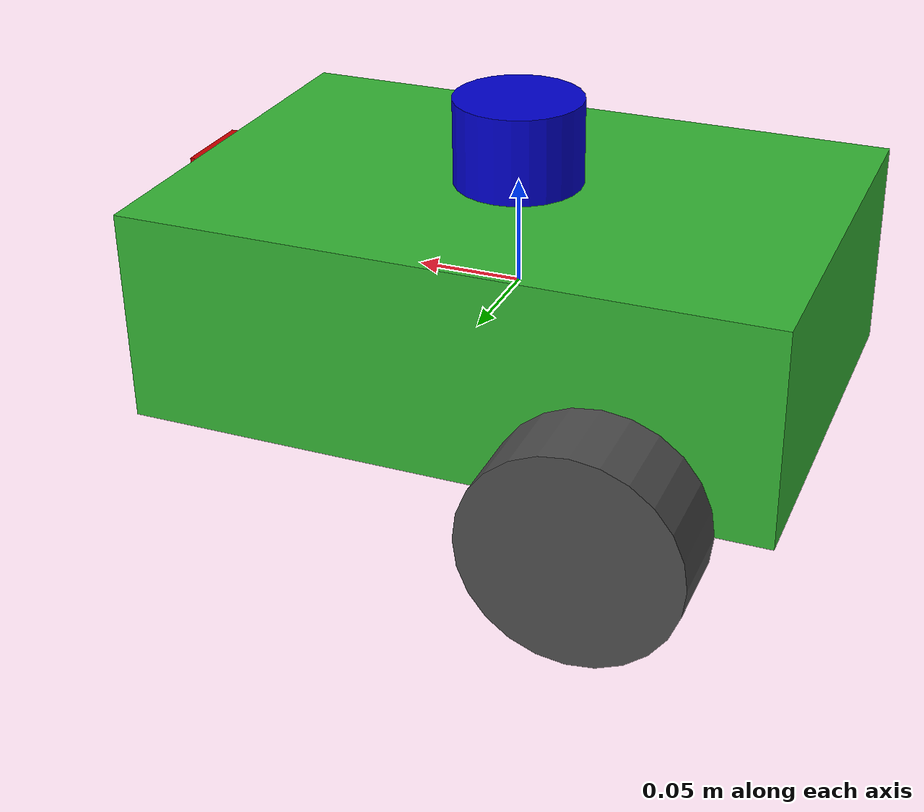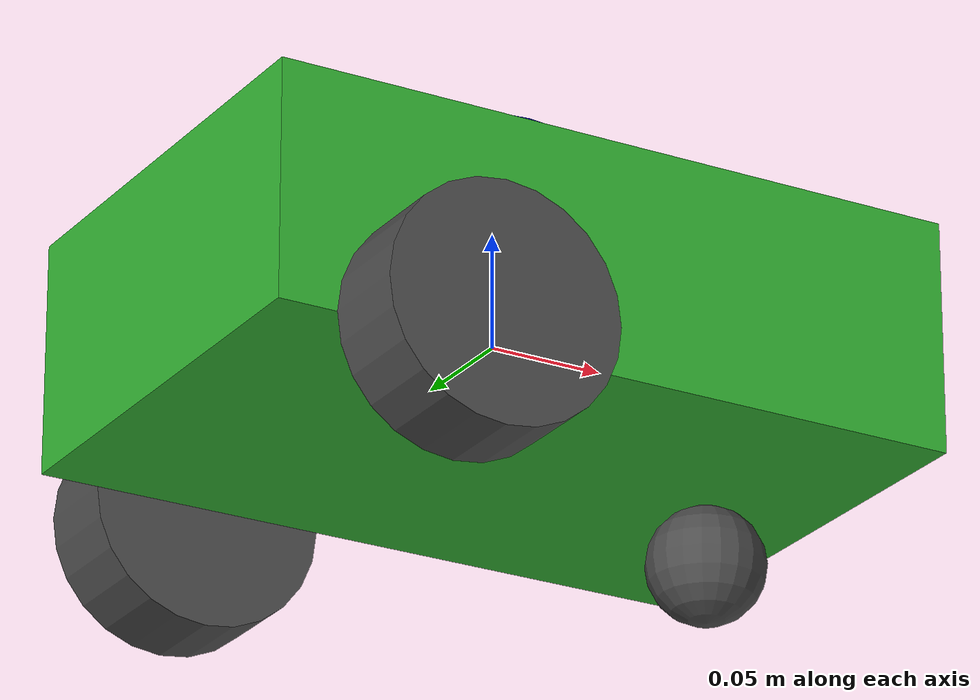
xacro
<?xml version="1.0"?>
<robot xmlns:xacro="http://www.ros.org/wiki/xacro" name="grass_chopper">

  <!-- マテリアル定義 (見た目の色)                                       -->
  <material name="green">
    <color rgba="0.2 0.7 0.2 1.0"/>
  </material>
  <material name="dark_grey">
    <color rgba="0.3 0.3 0.3 1.0"/>
  </material>
  <material name="blue">
    <color rgba="0.0 0.0 0.8 1.0"/>
  </material>
  <material name="red">
    <color rgba="0.8 0.0 0.0 1.0"/>
  </material>

  <!-- ロボット寸法パラメータ                                            -->
  <!-- Xacroのプロパティで一元管理（変更が容易）                        -->
  <!-- シャーシ（本体）の寸法 [m] -->
  <xacro:property name="chassis_length" value="0.3"/>
  <xacro:property name="chassis_width" value="0.2"/>
  <xacro:property name="chassis_height" value="0.1"/>
  <xacro:property name="chassis_mass" value="2.0"/>

  <!-- 駆動輪の寸法 [m] -->
  <xacro:property name="wheel_radius" value="0.05"/>
  <xacro:property name="wheel_width" value="0.04"/>
  <xacro:property name="wheel_mass" value="0.3"/>

  <!-- キャスター（受動輪）の寸法 [m] -->
  <xacro:property name="caster_radius" value="0.025"/>
  <xacro:property name="caster_mass" value="0.1"/>

  <!-- 車輪間の距離 [m] (差動駆動の旋回に影響) -->
  <xacro:property name="wheel_separation" value="0.24"/>

  <!-- 慣性テンソル計算マクロ                                            -->
  <!-- 物理シミュレーションには質量と慣性モーメントが必須です。          -->
  <!-- これらがないとGazeboがモデルを正しく扱えません。                 -->

  <!-- 直方体の慣性テンソル -->
  <xacro:macro name="box_inertia" params="m x y z">
    <inertial>
      <mass value="${m}"/>
      <inertia
        ixx="${m*(y*y+z*z)/12}" ixy="0.0" ixz="0.0"
        iyy="${m*(x*x+z*z)/12}" iyz="0.0"
        izz="${m*(x*x+y*y)/12}"/>
    </inertial>
  </xacro:macro>

  <!-- 円柱の慣性テンソル -->
  <xacro:macro name="cylinder_inertia" params="m r l">
    <inertial>
      <mass value="${m}"/>
      <inertia
        ixx="${m*(3*r*r+l*l)/12}" ixy="0.0" ixz="0.0"
        iyy="${m*(3*r*r+l*l)/12}" iyz="0.0"
        izz="${m*r*r/2}"/>
    </inertial>
  </xacro:macro>

  <!-- 球体の慣性テンソル -->
  <xacro:macro name="sphere_inertia" params="m r">
    <inertial>
      <mass value="${m}"/>
      <inertia
        ixx="${2*m*r*r/5}" ixy="0.0" ixz="0.0"
        iyy="${2*m*r*r/5}" iyz="0.0"
        izz="${2*m*r*r/5}"/>
    </inertial>
  </xacro:macro>

  <!-- base_link: ロボット本体（シャーシ）                               -->
  <!-- ロボットの中心となるリンク。全ての部品はここを基準に配置される -->
  <link name="base_link">
    <!-- 慣性パラメータ（物理計算に必須） -->
    <xacro:box_inertia m="${chassis_mass}"
      x="${chassis_length}" y="${chassis_width}" z="${chassis_height}"/>
    <!-- 見た目（rviz2やGazeboで表示される形状） -->
    <visual>
      <geometry>
        <box size="${chassis_length} ${chassis_width} ${chassis_height}"/>
      </geometry>
      <material name="green"/>
    </visual>
    <!-- 衝突判定（物理エンジンが使う形状） -->
    <collision>
      <geometry>
        <box size="${chassis_length} ${chassis_width} ${chassis_height}"/>
      </geometry>
    </collision>
  </link>

  <!-- 車輪マクロ: 左右の車輪を共通化                                   -->
  <!-- prefix: "left" or "right"                                         -->
  <!-- y_offset: 車輪のY軸方向のオフセット（正=左、負=右）             -->
  <xacro:macro name="wheel" params="prefix y_offset">
    <link name="${prefix}_wheel_link">
      <xacro:cylinder_inertia m="${wheel_mass}" r="${wheel_radius}" l="${wheel_width}"/>
      <visual>
        <!-- 車輪はY軸方向に配置するため、X軸周りに90度回転 -->
        <geometry>
          <cylinder radius="${wheel_radius}" length="${wheel_width}"/>
        </geometry>
        <material name="dark_grey"/>
      </visual>
      <collision>
        <geometry>
          <cylinder radius="${wheel_radius}" length="${wheel_width}"/>
        </geometry>
      </collision>
    </link>

    <!-- continuous joint: 無限に回転できるジョイント（車輪に最適） -->
    <joint name="${prefix}_wheel_joint" type="continuous">
      <parent link="base_link"/>
      <child link="${prefix}_wheel_link"/>
      <!-- 車輪の位置: シャーシ後方、左右にオフセット、地面に接する高さ -->
      <origin xyz="${-chassis_length/4} ${y_offset} ${-chassis_height/2}"
              rpy="${-pi/2} 0 0"/>
      <!-- 回転軸: Z軸（rpy回転後のローカル座標系でY軸=前進方向の回転） -->
      <axis xyz="0 0 1"/>
    </joint>
  </xacro:macro>

  <!-- 左車輪を配置 -->
  <xacro:wheel prefix="left" y_offset="${wheel_separation/2}"/>
  <!-- 右車輪を配置 -->
  <xacro:wheel prefix="right" y_offset="${-wheel_separation/2}"/>

  <!-- キャスター: 前方の受動輪                                         -->
  <!-- 摩擦ゼロの球体で簡略化（実際のキャスターは自由回転する車輪） -->
  <link name="caster_link">
    <xacro:sphere_inertia m="${caster_mass}" r="${caster_radius}"/>
    <visual>
      <geometry>
        <sphere radius="${caster_radius}"/>
      </geometry>
      <material name="dark_grey"/>
    </visual>
    <collision>
      <geometry>
        <sphere radius="${caster_radius}"/>
      </geometry>
    </collision>
  </link>

  <joint name="caster_joint" type="fixed">
    <parent link="base_link"/>
    <child link="caster_link"/>
    <!-- シャーシ前方、地面に接する位置 -->
    <origin xyz="${chassis_length/3} 0 ${-chassis_height/2 - caster_radius + 0.001}"
            rpy="0 0 0"/>
  </joint>

  <!-- キャスターの摩擦をゼロに設定（滑るように移動） -->
  <gazebo reference="caster_link">
    <mu1>0.0</mu1>
    <mu2>0.0</mu2>
  </gazebo>

  <!-- LiDARセンサー: レーザースキャナー                                 -->
  <!-- 360度の距離データを取得して障害物を検知する -->
  <link name="lidar_link">
    <xacro:cylinder_inertia m="0.1" r="0.03" l="0.04"/>
    <visual>
      <geometry>
        <cylinder radius="0.03" length="0.04"/>
      </geometry>
      <material name="blue"/>
    </visual>
    <collision>
      <geometry>
        <cylinder radius="0.03" length="0.04"/>
      </geometry>
    </collision>
  </link>

  <joint name="lidar_joint" type="fixed">
    <parent link="base_link"/>
    <child link="lidar_link"/>
    <!-- シャーシ上面の中央に配置 -->
    <origin xyz="0 0 ${chassis_height/2 + 0.02}" rpy="0 0 0"/>
  </joint>

  <!-- Gazebo Harmonic用 LiDARセンサー設定 -->
  <gazebo reference="lidar_link">
    <sensor name="lidar" type="gpu_lidar">
      <!-- 常にアクティブ -->
      <always_on>true</always_on>
      <!-- LiDARの光線を可視化（デバッグ用） -->
      <visualize>true</visualize>
      <!-- スキャン頻度 [Hz] -->
      <update_rate>10</update_rate>
      <!-- Gazebo側のトピック名（ros_gz_bridgeで/scanに変換） -->
      <topic>scan</topic>
      <!-- TFフレームID -->
      <gz_frame_id>lidar_link</gz_frame_id>
      <ray>
        <scan>
          <horizontal>
            <!-- 360サンプルで360度スキャン（1度刻み） -->
            <samples>360</samples>
            <resolution>1.0</resolution>
            <!-- -180度 ～ +180度（全方位） -->
            <min_angle>-3.14159</min_angle>
            <max_angle>3.14159</max_angle>
          </horizontal>
        </scan>
        <range>
          <!-- 検出可能距離: 0.12m ～ 10.0m -->
          <min>0.12</min>
          <max>10.0</max>
          <!-- 距離分解能 [m] -->
          <resolution>0.01</resolution>
        </range>
      </ray>
    </sensor>
  </gazebo>

  <!-- カメラセンサー: RGB画像撮影                                      -->
  <link name="camera_link">
    <xacro:box_inertia m="0.05" x="0.02" y="0.04" z="0.04"/>
    <visual>
      <geometry>
        <box size="0.02 0.04 0.04"/>
      </geometry>
      <material name="red"/>
    </visual>
    <collision>
      <geometry>
        <box size="0.02 0.04 0.04"/>
      </geometry>
    </collision>
  </link>

  <joint name="camera_joint" type="fixed">
    <parent link="base_link"/>
    <child link="camera_link"/>
    <!-- シャーシ前面の上部に配置（前方を向く） -->
    <origin xyz="${chassis_length/2} 0 ${chassis_height/4}" rpy="0 0 0"/>
  </joint>

  <!-- Gazebo Harmonic用 カメラセンサー設定 -->
  <gazebo reference="camera_link">
    <sensor name="camera" type="camera">
      <always_on>true</always_on>
      <!-- フレームレート [fps] (ソフトウェアレンダリングの負荷軽減のため低めに設定) -->
      <update_rate>5.0</update_rate>
      <!-- Gazebo側のトピック名 -->
      <topic>camera/image_raw</topic>
      <gz_frame_id>camera_link</gz_frame_id>
      <camera>
        <!-- 水平視野角 [rad] (約60度) -->
        <horizontal_fov>1.047</horizontal_fov>
        <image>
          <width>640</width>
          <height>480</height>
          <format>R8G8B8</format>
        </image>
        <clip>
          <!-- 撮影可能距離: 0.1m ～ 100m -->
          <near>0.1</near>
          <far>100</far>
        </clip>
      </camera>
    </sensor>
  </gazebo>

  <!-- IMUセンサー: 慣性計測装置 (Phase 4f: 傾斜検知)                   -->
  <link name="imu_link">
    <xacro:box_inertia m="0.01" x="0.01" y="0.01" z="0.01"/>
    <visual>
      <geometry>
        <box size="0.01 0.01 0.01"/>
      </geometry>
      <material name="dark_grey"/>
    </visual>
  </link>

  <joint name="imu_joint" type="fixed">
    <parent link="base_link"/>
    <child link="imu_link"/>
    <origin xyz="0 0 0" rpy="0 0 0"/>
  </joint>

  <!-- Gazebo Harmonic用 IMUセンサー設定 -->
  <gazebo reference="imu_link">
    <sensor name="imu_sensor" type="imu">
      <always_on>true</always_on>
      <update_rate>50</update_rate>
      <visualize>false</visualize>
      <topic>imu</topic>
      <gz_frame_id>imu_link</gz_frame_id>
    </sensor>
  </gazebo>

  <!-- Gazebo Harmonicプラグイン                                         -->

  <!-- 差動駆動プラグイン -->
  <!-- 左右の車輪の回転差で前進・旋回を制御する -->
  <gazebo>
    <plugin filename="gz-sim-diff-drive-system"
            name="gz::sim::systems::DiffDrive">
      <!-- 左右の車輪ジョイント名 -->
      <left_joint>left_wheel_joint</left_joint>
      <right_joint>right_wheel_joint</right_joint>
      <!-- 車輪間の距離 [m] -->
      <wheel_separation>${wheel_separation}</wheel_separation>
      <!-- 車輪の半径 [m] -->
      <wheel_radius>${wheel_radius}</wheel_radius>
      <!-- オドメトリの発行頻度 [Hz] -->
      <odom_publish_frequency>50</odom_publish_frequency>
      <!-- 速度指令を受け取るトピック（ros_gz_bridgeで/cmd_velから変換） -->
      <topic>cmd_vel</topic>
      <!-- オドメトリトピック -->
      <odom_topic>odom</odom_topic>
      <!-- TFフレーム名 -->
      <frame_id>odom</frame_id>
      <child_frame_id>base_link</child_frame_id>
      <!-- TFトピック名: ros_gz_bridge で /tf として直接ブリッジ可能にする -->
      <tf_topic>/tf</tf_topic>
    </plugin>
  </gazebo>

  <!-- IMU システムプラグイン -->
  <!-- IMU センサーデータを計算・発行するためのプラグイン -->
  <gazebo>
    <plugin filename="gz-sim-imu-system"
            name="gz::sim::systems::Imu">
    </plugin>
  </gazebo>

  <!-- 関節状態パブリッシャー -->
  <!-- 車輪の回転角度をROS 2に送信（robot_state_publisherが使用） -->
  <gazebo>
    <plugin filename="gz-sim-joint-state-publisher-system"
            name="gz::sim::systems::JointStatePublisher">
      <topic>joint_states</topic>
    </plugin>
  </gazebo>

</robot>
